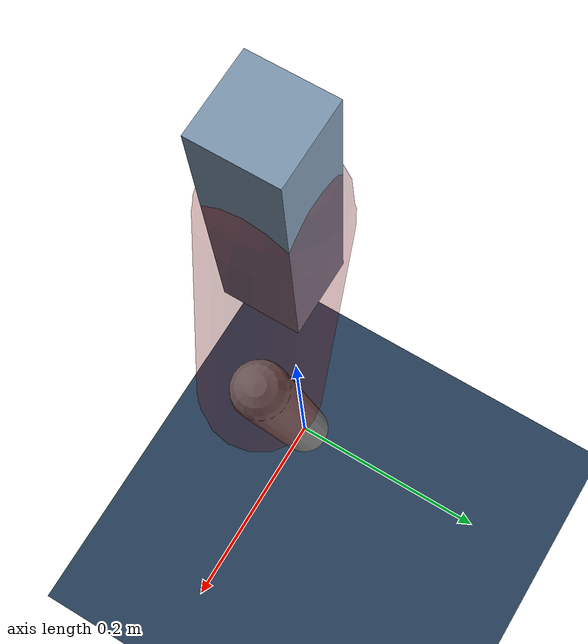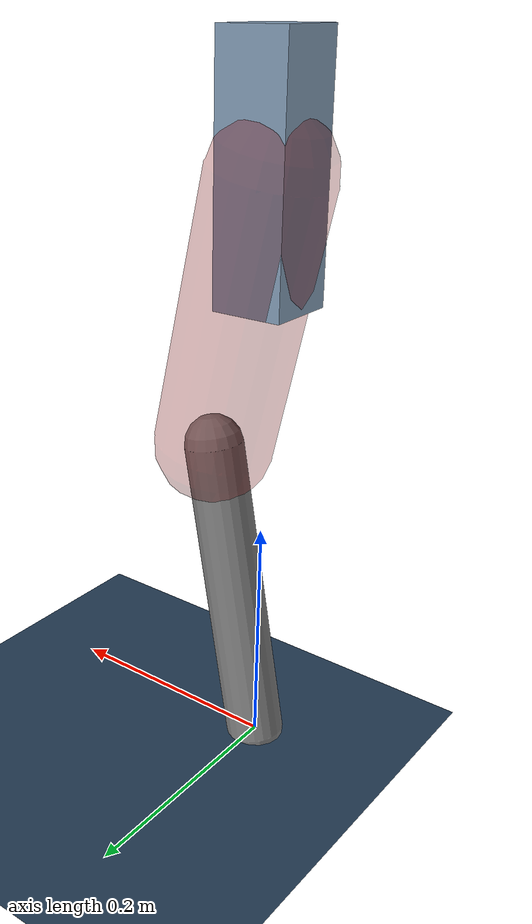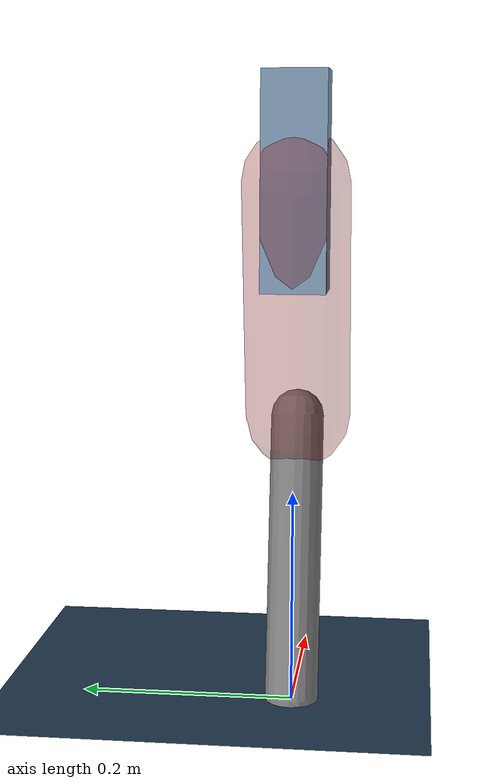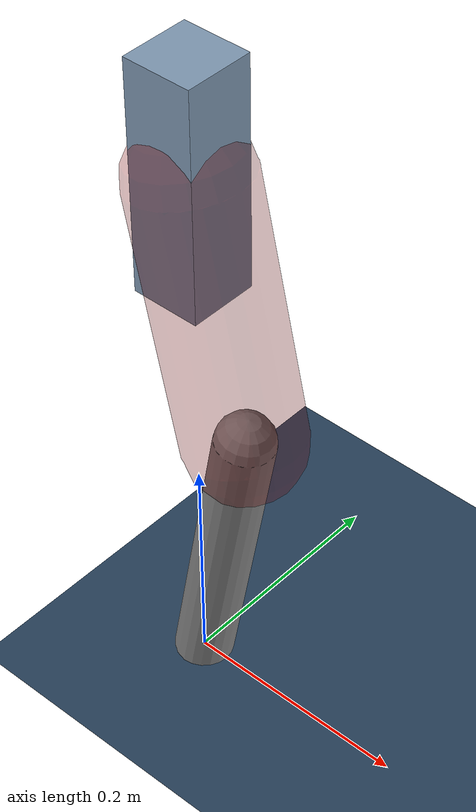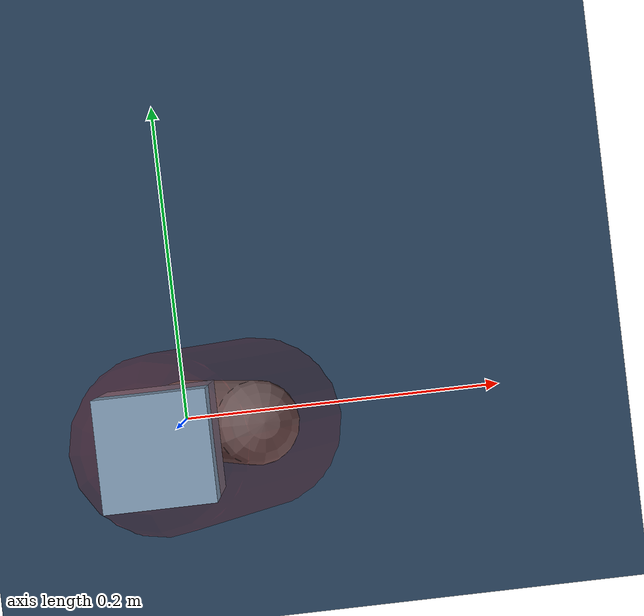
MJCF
<mujoco model="Hopper2D">
	<compiler inertiafromgeom="true" angle="radian" />
	<option timestep="0.001" integrator="implicit" cone="elliptic" solver="Newton" tolerance="1e-10" />

	<default>
		<geom contype="1" conaffinity="1" condim="3" friction="2 0.005 0.0001" solref="0.005 1" />
		<joint limited="true" damping="0.1" />
	</default>

	<asset>
		<texture name="skybox" type="skybox" builtin="gradient" rgb1=".4 .6 .8" rgb2="0 0 0" width="800" height="800" />
		<texture name="grid" type="2d" builtin="checker" rgb1=".1 .2 .3" rgb2=".2 .3 .4" width="300" height="300" mark="edge" markrgb=".2 .3 .4" />
		<material name="ground" texture="grid" texrepeat="1 1" texuniform="true" reflectance="0.1" />
		<material name="leg" rgba="0.5 0.6 0.7 1" />
	</asset>

	<worldbody>

		<geom name="floor" type="plane" size="5 5 0.25" material="ground" />

		<light directional="false" diffuse="0.8 0.8 0.8" specular="0.3 0.3 0.3" pos="0 0 2" dir="0 0 -1" />
		<light mode="targetbodycom" target="base" directional="false" diffuse="0.8 0.8 0.8" specular="0.3 0.3 0.3" pos="0 0 2" dir="0 0 -1" />

		<camera name="fixed" pos="0 -2 1" xyaxes="1 0 0 0 0 1" />
		<camera name="tracking" mode="trackcom" pos="0 -3 1" />

		<body name="root" pos="0 0 0.48830608889511196">
			<joint name="slide_x" type="slide" axis="1 0 0" range="-100 100" />
			<joint name="slide_z" type="slide" axis="0 0 1" range="0 10" />

			<body name="base" pos="0 0 0">
				<geom name="torso" type="box" size="0.03 0.03 0.1" mass="2.613" material="leg" />

				<body name="link1" pos="0 0 0" euler="0 1.352014603695267 0">
					<joint type="hinge" axis="0 -1 0" pos="0 0 0" name="hinge1" limited="true" range="-3.14 3.14" stiffness="0" damping="0.1" />
					<geom name="thigh" type="capsule" fromto="0 0 0 0.2279607964825267 0 0" size="0.05" rgba="0.5 0 0 0.3" mass="0.7998019912063168" />

					<body name="link2" pos="0.2279607964825267 0 0" euler="0 0.4028321926681385 0">
						<joint type="hinge" axis="0 -1 0" pos="0 0 0" name="hinge2" limited="true" range="-3.14 3.14" stiffness="0" damping="0.1" />
						<geom name="shank" type="capsule" fromto="0 0 0 0.27034529241258526 0 0" size="0.025" mass="0.4592107631713267" />

					</body>
				</body>
			</body>
		</body>
	</worldbody>

	<actuator>
		<motor name="torque1" joint="hinge1" ctrlrange="-109.55063769203343 109.55063769203343" ctrllimited="true" gear="1" />
		<motor name="torque2" joint="hinge2" ctrlrange="-85.16624924671297 85.16624924671297" ctrllimited="true" gear="1" />
	</actuator>
</mujoco>
